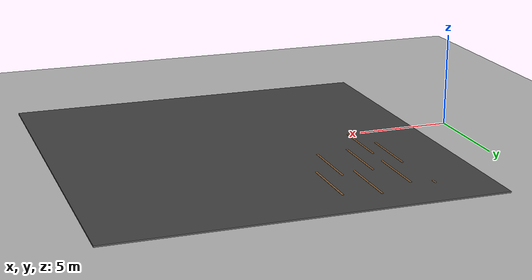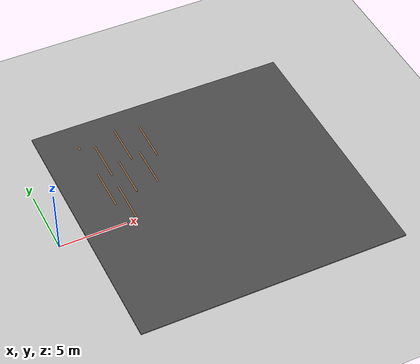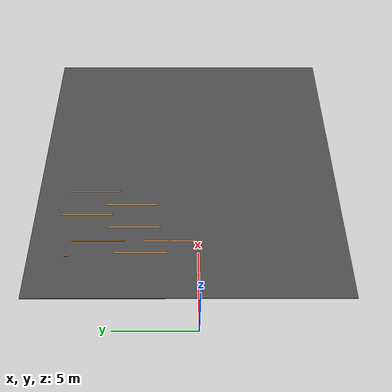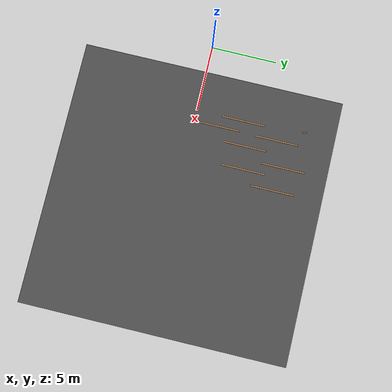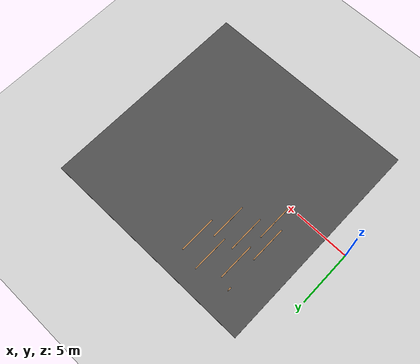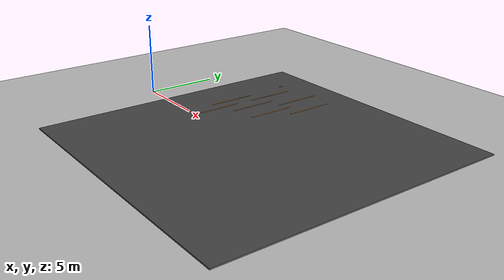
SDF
<sdf version="1.7">
 <world name="default">
  <model name="ground_plane">
   <static>1</static>
   <link name="link">
    <collision name="collision">
     <geometry><plane><normal>0 0 1</normal><size>100 100</size></plane></geometry>
     <surface><friction><ode><mu>100</mu><mu2>50</mu2></ode></friction></surface>
    </collision>
    <visual name="visual">
     <cast_shadows>0</cast_shadows>
     <geometry><plane><normal>0 0 1</normal><size>100 100</size></plane></geometry>
     <material>
      <script><uri>file://media/materials/scripts/gazebo.material</uri><name>Gazebo/Grey</name></script>
     </material>
    </visual>
   </link>
  </model>
  <model name="asphalt_plane">
   <static>1</static>
   <link name="link">
    <collision name="collision"><geometry><box><size>20 20 0.1</size></box></geometry></collision>
    <visual name="visual">
     <cast_shadows>0</cast_shadows>
     <geometry><box><size>20 20 0.1</size></box></geometry>
     <material>
      <script>
       <uri>model://asphalt_plane/materials/scripts</uri>
       <uri>model://asphalt_plane/materials/textures</uri>
       <name>vrc/asphalt</name>
      </script>
     </material>
    </visual>
   </link>
   <pose>11.9878 0.594036 0 0 -0 0</pose>
  </model>
  <model name="wooden_board33_0">
   <link name="base">
    <pose>-0 -0 0.00523 0 -0 0</pose>
    <inertial>
     <mass>0.2765</mass>
     <inertia>
      <ixx>0.0025148</ixx>
      <ixy>0</ixy>
      <ixz>0</ixz>
      <iyy>0.00024037</iyy>
      <iyz>0</iyz>
      <izz>0.00275013</izz>
     </inertia>
    </inertial>
    <visual name="visual">
     <geometry><box><size>0.1016 3.3302 0.02046</size></box></geometry>
     <material>
      <script><uri>file://media/materials/scripts/gazebo.material</uri><name>Gazebo/Wood</name></script>
      <shader type="pixel"><normal_map>__default__</normal_map></shader>
      <ambient>1 1 1 1</ambient>
      <diffuse>1 1 1 1</diffuse>
      <specular>0.2 0.2 0.2 1</specular>
      <emissive>0 0 0 1</emissive>
     </material>
    </visual>
    <visual name="tee_nut_1">
     <pose>0 -0.116 0 0 -0 0</pose>
     <geometry><cylinder><radius>0.00635</radius><length>0.020565</length></cylinder></geometry>
     <material>
      <script><uri>file://media/materials/scripts/gazebo.material</uri><name>Gazebo/Grey</name></script>
      <shader type="pixel"><normal_map>__default__</normal_map></shader>
      <ambient>0.3 0.3 0.3 1</ambient>
      <diffuse>0.7 0.7 0.7 1</diffuse>
      <specular>0.01 0.01 0.01 1</specular>
      <emissive>0 0 0 1</emissive>
     </material>
    </visual>
    <visual name="tee_nut_3">
     <pose>0 0.038 0 0 -0 0</pose>
     <geometry><cylinder><radius>0.00635</radius><length>0.020565</length></cylinder></geometry>
     <material>
      <script><uri>file://media/materials/scripts/gazebo.material</uri><name>Gazebo/Grey</name></script>
      <shader type="pixel"><normal_map>__default__</normal_map></shader>
      <ambient>0.3 0.3 0.3 1</ambient>
      <diffuse>0.7 0.7 0.7 1</diffuse>
      <specular>0.01 0.01 0.01 1</specular>
      <emissive>0 0 0 1</emissive>
     </material>
    </visual>
    <visual name="tee_nut_2">
     <pose>0 -0.038 0 0 -0 0</pose>
     <geometry><cylinder><radius>0.00635</radius><length>0.020565</length></cylinder></geometry>
     <material>
      <script><uri>file://media/materials/scripts/gazebo.material</uri><name>Gazebo/Grey</name></script>
      <shader type="pixel"><normal_map>__default__</normal_map></shader>
      <ambient>0.3 0.3 0.3 1</ambient>
      <diffuse>0.7 0.7 0.7 1</diffuse>
      <specular>0.01 0.01 0.01 1</specular>
      <emissive>0 0 0 1</emissive>
     </material>
    </visual>
    <visual name="tee_nut_4">
     <pose>0 0.116 0 0 -0 0</pose>
     <geometry><cylinder><radius>0.00635</radius><length>0.020565</length></cylinder></geometry>
     <material>
      <script><uri>file://media/materials/scripts/gazebo.material</uri><name>Gazebo/Grey</name></script>
      <shader type="pixel"><normal_map>__default__</normal_map></shader>
      <ambient>0.3 0.3 0.3 1</ambient>
      <diffuse>0.7 0.7 0.7 1</diffuse>
      <specular>0.01 0.01 0.01 1</specular>
      <emissive>0 0 0 1</emissive>
     </material>
    </visual>
    <collision name="collision">
     <geometry><box><size>0.1016 0.3302 0.01046</size></box></geometry>
     <surface>
      <friction>
       <ode><mu>1</mu><mu2>1</mu2><fdir1>0 0 0</fdir1><slip1>0</slip1><slip2>0</slip2></ode>
       <torsional>
        <coefficient>1</coefficient>
        <patch_radius>0</patch_radius>
        <surface_radius>0.01</surface_radius>
        <use_patch_radius>0</use_patch_radius>
        <ode><slip>0</slip></ode>
       </torsional>
      </friction>
      <bounce><restitution_coefficient>0</restitution_coefficient><threshold>1e+06</threshold></bounce>
      <contact>
       <collide_without_contact>0</collide_without_contact>
       <collide_without_contact_bitmask>1</collide_without_contact_bitmask>
       <collide_bitmask>1</collide_bitmask>
       <ode>
        <soft_cfm>0</soft_cfm>
        <soft_erp>0.2</soft_erp>
        <kp>100000</kp>
        <kd>100</kd>
        <max_vel>100</max_vel>
        <min_depth>0.001</min_depth>
       </ode>
       <bullet>
        <split_impulse>1</split_impulse>
        <split_impulse_penetration_threshold>-0.01</split_impulse_penetration_threshold>
        <soft_cfm>0</soft_cfm>
        <soft_erp>0.2</soft_erp>
        <kp>100000</kp>
        <kd>100</kd>
       </bullet>
      </contact>
     </surface>
    </collision>
   </link>
   <static>0</static>
   <pose>5.87061 1.83502 0.048993 0 -0 6e-05</pose>
  </model>
  <model name="wooden_board33_2">
   <link name="base">
    <pose>-0 -0 0.00523 0 -0 0</pose>
    <inertial>
     <mass>0.2765</mass>
     <inertia>
      <ixx>0.0025148</ixx>
      <ixy>0</ixy>
      <ixz>0</ixz>
      <iyy>0.00024037</iyy>
      <iyz>0</iyz>
      <izz>0.00275013</izz>
     </inertia>
    </inertial>
    <visual name="visual">
     <geometry><box><size>0.1016 3.3302 0.02046</size></box></geometry>
     <material>
      <script><uri>file://media/materials/scripts/gazebo.material</uri><name>Gazebo/Wood</name></script>
      <shader type="pixel"><normal_map>__default__</normal_map></shader>
      <ambient>1 1 1 1</ambient>
      <diffuse>1 1 1 1</diffuse>
      <specular>0.2 0.2 0.2 1</specular>
      <emissive>0 0 0 1</emissive>
     </material>
    </visual>
    <visual name="tee_nut_1">
     <pose>0 -0.116 0 0 -0 0</pose>
     <geometry><cylinder><radius>0.00635</radius><length>0.020565</length></cylinder></geometry>
     <material>
      <script><uri>file://media/materials/scripts/gazebo.material</uri><name>Gazebo/Grey</name></script>
      <shader type="pixel"><normal_map>__default__</normal_map></shader>
      <ambient>0.3 0.3 0.3 1</ambient>
      <diffuse>0.7 0.7 0.7 1</diffuse>
      <specular>0.01 0.01 0.01 1</specular>
      <emissive>0 0 0 1</emissive>
     </material>
    </visual>
    <visual name="tee_nut_3">
     <pose>0 0.038 0 0 -0 0</pose>
     <geometry><cylinder><radius>0.00635</radius><length>0.020565</length></cylinder></geometry>
     <material>
      <script><uri>file://media/materials/scripts/gazebo.material</uri><name>Gazebo/Grey</name></script>
      <shader type="pixel"><normal_map>__default__</normal_map></shader>
      <ambient>0.3 0.3 0.3 1</ambient>
      <diffuse>0.7 0.7 0.7 1</diffuse>
      <specular>0.01 0.01 0.01 1</specular>
      <emissive>0 0 0 1</emissive>
     </material>
    </visual>
    <visual name="tee_nut_2">
     <pose>0 -0.038 0 0 -0 0</pose>
     <geometry><cylinder><radius>0.00635</radius><length>0.020565</length></cylinder></geometry>
     <material>
      <script><uri>file://media/materials/scripts/gazebo.material</uri><name>Gazebo/Grey</name></script>
      <shader type="pixel"><normal_map>__default__</normal_map></shader>
      <ambient>0.3 0.3 0.3 1</ambient>
      <diffuse>0.7 0.7 0.7 1</diffuse>
      <specular>0.01 0.01 0.01 1</specular>
      <emissive>0 0 0 1</emissive>
     </material>
    </visual>
    <visual name="tee_nut_4">
     <pose>0 0.116 0 0 -0 0</pose>
     <geometry><cylinder><radius>0.00635</radius><length>0.020565</length></cylinder></geometry>
     <material>
      <script><uri>file://media/materials/scripts/gazebo.material</uri><name>Gazebo/Grey</name></script>
      <shader type="pixel"><normal_map>__default__</normal_map></shader>
      <ambient>0.3 0.3 0.3 1</ambient>
      <diffuse>0.7 0.7 0.7 1</diffuse>
      <specular>0.01 0.01 0.01 1</specular>
      <emissive>0 0 0 1</emissive>
     </material>
    </visual>
    <collision name="collision">
     <geometry><box><size>0.1016 0.3302 0.01046</size></box></geometry>
     <surface>
      <friction>
       <ode><mu>1</mu><mu2>1</mu2><fdir1>0 0 0</fdir1><slip1>0</slip1><slip2>0</slip2></ode>
       <torsional>
        <coefficient>1</coefficient>
        <patch_radius>0</patch_radius>
        <surface_radius>0.01</surface_radius>
        <use_patch_radius>0</use_patch_radius>
        <ode><slip>0</slip></ode>
       </torsional>
      </friction>
      <bounce><restitution_coefficient>0</restitution_coefficient><threshold>1e+06</threshold></bounce>
      <contact>
       <collide_without_contact>0</collide_without_contact>
       <collide_without_contact_bitmask>1</collide_without_contact_bitmask>
       <collide_bitmask>1</collide_bitmask>
       <ode>
        <soft_cfm>0</soft_cfm>
        <soft_erp>0.2</soft_erp>
        <kp>100000</kp>
        <kd>100</kd>
        <max_vel>100</max_vel>
        <min_depth>0.001</min_depth>
       </ode>
       <bullet>
        <split_impulse>1</split_impulse>
        <split_impulse_penetration_threshold>-0.01</split_impulse_penetration_threshold>
        <soft_cfm>0</soft_cfm>
        <soft_erp>0.2</soft_erp>
        <kp>100000</kp>
        <kd>100</kd>
       </bullet>
      </contact>
     </surface>
    </collision>
   </link>
   <static>0</static>
   <pose>5.03742 3.57915 0.048993 0 -0 6e-05</pose>
  </model>
  <model name="wooden_board33_3">
   <link name="base">
    <pose>-0 -0 0.00523 0 -0 0</pose>
    <inertial>
     <mass>0.2765</mass>
     <inertia>
      <ixx>0.0025148</ixx>
      <ixy>0</ixy>
      <ixz>0</ixz>
      <iyy>0.00024037</iyy>
      <iyz>0</iyz>
      <izz>0.00275013</izz>
     </inertia>
    </inertial>
    <visual name="visual">
     <geometry><box><size>0.1016 3.3302 0.02046</size></box></geometry>
     <material>
      <script><uri>file://media/materials/scripts/gazebo.material</uri><name>Gazebo/Wood</name></script>
      <shader type="pixel"><normal_map>__default__</normal_map></shader>
      <ambient>1 1 1 1</ambient>
      <diffuse>1 1 1 1</diffuse>
      <specular>0.2 0.2 0.2 1</specular>
      <emissive>0 0 0 1</emissive>
     </material>
    </visual>
    <visual name="tee_nut_1">
     <pose>0 -0.116 0 0 -0 0</pose>
     <geometry><cylinder><radius>0.00635</radius><length>0.020565</length></cylinder></geometry>
     <material>
      <script><uri>file://media/materials/scripts/gazebo.material</uri><name>Gazebo/Grey</name></script>
      <shader type="pixel"><normal_map>__default__</normal_map></shader>
      <ambient>0.3 0.3 0.3 1</ambient>
      <diffuse>0.7 0.7 0.7 1</diffuse>
      <specular>0.01 0.01 0.01 1</specular>
      <emissive>0 0 0 1</emissive>
     </material>
    </visual>
    <visual name="tee_nut_3">
     <pose>0 0.038 0 0 -0 0</pose>
     <geometry><cylinder><radius>0.00635</radius><length>0.020565</length></cylinder></geometry>
     <material>
      <script><uri>file://media/materials/scripts/gazebo.material</uri><name>Gazebo/Grey</name></script>
      <shader type="pixel"><normal_map>__default__</normal_map></shader>
      <ambient>0.3 0.3 0.3 1</ambient>
      <diffuse>0.7 0.7 0.7 1</diffuse>
      <specular>0.01 0.01 0.01 1</specular>
      <emissive>0 0 0 1</emissive>
     </material>
    </visual>
    <visual name="tee_nut_2">
     <pose>0 -0.038 0 0 -0 0</pose>
     <geometry><cylinder><radius>0.00635</radius><length>0.020565</length></cylinder></geometry>
     <material>
      <script><uri>file://media/materials/scripts/gazebo.material</uri><name>Gazebo/Grey</name></script>
      <shader type="pixel"><normal_map>__default__</normal_map></shader>
      <ambient>0.3 0.3 0.3 1</ambient>
      <diffuse>0.7 0.7 0.7 1</diffuse>
      <specular>0.01 0.01 0.01 1</specular>
      <emissive>0 0 0 1</emissive>
     </material>
    </visual>
    <visual name="tee_nut_4">
     <pose>0 0.116 0 0 -0 0</pose>
     <geometry><cylinder><radius>0.00635</radius><length>0.020565</length></cylinder></geometry>
     <material>
      <script><uri>file://media/materials/scripts/gazebo.material</uri><name>Gazebo/Grey</name></script>
      <shader type="pixel"><normal_map>__default__</normal_map></shader>
      <ambient>0.3 0.3 0.3 1</ambient>
      <diffuse>0.7 0.7 0.7 1</diffuse>
      <specular>0.01 0.01 0.01 1</specular>
      <emissive>0 0 0 1</emissive>
     </material>
    </visual>
    <collision name="collision">
     <geometry><box><size>0.1016 0.3302 0.01046</size></box></geometry>
     <surface>
      <friction>
       <ode><mu>1</mu><mu2>1</mu2><fdir1>0 0 0</fdir1><slip1>0</slip1><slip2>0</slip2></ode>
       <torsional>
        <coefficient>1</coefficient>
        <patch_radius>0</patch_radius>
        <surface_radius>0.01</surface_radius>
        <use_patch_radius>0</use_patch_radius>
        <ode><slip>0</slip></ode>
       </torsional>
      </friction>
      <bounce><restitution_coefficient>0</restitution_coefficient><threshold>1e+06</threshold></bounce>
      <contact>
       <collide_without_contact>0</collide_without_contact>
       <collide_without_contact_bitmask>1</collide_without_contact_bitmask>
       <collide_bitmask>1</collide_bitmask>
       <ode>
        <soft_cfm>0</soft_cfm>
        <soft_erp>0.2</soft_erp>
        <kp>100000</kp>
        <kd>100</kd>
        <max_vel>100</max_vel>
        <min_depth>0.001</min_depth>
       </ode>
       <bullet>
        <split_impulse>1</split_impulse>
        <split_impulse_penetration_threshold>-0.01</split_impulse_penetration_threshold>
        <soft_cfm>0</soft_cfm>
        <soft_erp>0.2</soft_erp>
        <kp>100000</kp>
        <kd>100</kd>
       </bullet>
      </contact>
     </surface>
    </collision>
   </link>
   <static>0</static>
   <pose>5.92379 6.30968 0.048993 0 -0 6e-05</pose>
  </model>
  <model name="wooden_board33_5">
   <link name="base">
    <pose>-0 -0 0.00523 0 -0 0</pose>
    <inertial>
     <mass>0.2765</mass>
     <inertia>
      <ixx>0.0025148</ixx>
      <ixy>0</ixy>
      <ixz>0</ixz>
      <iyy>0.00024037</iyy>
      <iyz>0</iyz>
      <izz>0.00275013</izz>
     </inertia>
    </inertial>
    <visual name="visual">
     <geometry><box><size>0.1016 3.3302 0.02046</size></box></geometry>
     <material>
      <script><uri>file://media/materials/scripts/gazebo.material</uri><name>Gazebo/Wood</name></script>
      <shader type="pixel"><normal_map>__default__</normal_map></shader>
      <ambient>1 1 1 1</ambient>
      <diffuse>1 1 1 1</diffuse>
      <specular>0.2 0.2 0.2 1</specular>
      <emissive>0 0 0 1</emissive>
     </material>
    </visual>
    <visual name="tee_nut_1">
     <pose>0 -0.116 0 0 -0 0</pose>
     <geometry><cylinder><radius>0.00635</radius><length>0.020565</length></cylinder></geometry>
     <material>
      <script><uri>file://media/materials/scripts/gazebo.material</uri><name>Gazebo/Grey</name></script>
      <shader type="pixel"><normal_map>__default__</normal_map></shader>
      <ambient>0.3 0.3 0.3 1</ambient>
      <diffuse>0.7 0.7 0.7 1</diffuse>
      <specular>0.01 0.01 0.01 1</specular>
      <emissive>0 0 0 1</emissive>
     </material>
    </visual>
    <visual name="tee_nut_3">
     <pose>0 0.038 0 0 -0 0</pose>
     <geometry><cylinder><radius>0.00635</radius><length>0.020565</length></cylinder></geometry>
     <material>
      <script><uri>file://media/materials/scripts/gazebo.material</uri><name>Gazebo/Grey</name></script>
      <shader type="pixel"><normal_map>__default__</normal_map></shader>
      <ambient>0.3 0.3 0.3 1</ambient>
      <diffuse>0.7 0.7 0.7 1</diffuse>
      <specular>0.01 0.01 0.01 1</specular>
      <emissive>0 0 0 1</emissive>
     </material>
    </visual>
    <visual name="tee_nut_2">
     <pose>0 -0.038 0 0 -0 0</pose>
     <geometry><cylinder><radius>0.00635</radius><length>0.020565</length></cylinder></geometry>
     <material>
      <script><uri>file://media/materials/scripts/gazebo.material</uri><name>Gazebo/Grey</name></script>
      <shader type="pixel"><normal_map>__default__</normal_map></shader>
      <ambient>0.3 0.3 0.3 1</ambient>
      <diffuse>0.7 0.7 0.7 1</diffuse>
      <specular>0.01 0.01 0.01 1</specular>
      <emissive>0 0 0 1</emissive>
     </material>
    </visual>
    <visual name="tee_nut_4">
     <pose>0 0.116 0 0 -0 0</pose>
     <geometry><cylinder><radius>0.00635</radius><length>0.020565</length></cylinder></geometry>
     <material>
      <script><uri>file://media/materials/scripts/gazebo.material</uri><name>Gazebo/Grey</name></script>
      <shader type="pixel"><normal_map>__default__</normal_map></shader>
      <ambient>0.3 0.3 0.3 1</ambient>
      <diffuse>0.7 0.7 0.7 1</diffuse>
      <specular>0.01 0.01 0.01 1</specular>
      <emissive>0 0 0 1</emissive>
     </material>
    </visual>
    <collision name="collision">
     <geometry><box><size>0.1016 0.3302 0.01046</size></box></geometry>
     <surface>
      <friction>
       <ode><mu>1</mu><mu2>1</mu2><fdir1>0 0 0</fdir1><slip1>0</slip1><slip2>0</slip2></ode>
       <torsional>
        <coefficient>1</coefficient>
        <patch_radius>0</patch_radius>
        <surface_radius>0.01</surface_radius>
        <use_patch_radius>0</use_patch_radius>
        <ode><slip>0</slip></ode>
       </torsional>
      </friction>
      <bounce><restitution_coefficient>0</restitution_coefficient><threshold>1e+06</threshold></bounce>
      <contact>
       <collide_without_contact>0</collide_without_contact>
       <collide_without_contact_bitmask>1</collide_without_contact_bitmask>
       <collide_bitmask>1</collide_bitmask>
       <ode>
        <soft_cfm>0</soft_cfm>
        <soft_erp>0.2</soft_erp>
        <kp>100000</kp>
        <kd>100</kd>
        <max_vel>100</max_vel>
        <min_depth>0.001</min_depth>
       </ode>
       <bullet>
        <split_impulse>1</split_impulse>
        <split_impulse_penetration_threshold>-0.01</split_impulse_penetration_threshold>
        <soft_cfm>0</soft_cfm>
        <soft_erp>0.2</soft_erp>
        <kp>100000</kp>
        <kd>100</kd>
       </bullet>
      </contact>
     </surface>
    </collision>
   </link>
   <static>0</static>
   <pose>6.89687 4.10716 0.048993 0 -0 6e-05</pose>
  </model>
  <model name="wooden_board33_8">
   <link name="base">
    <pose>-0 -0 0.00523 0 -0 0</pose>
    <inertial>
     <mass>0.2765</mass>
     <inertia>
      <ixx>0.0025148</ixx>
      <ixy>0</ixy>
      <ixz>0</ixz>
      <iyy>0.00024037</iyy>
      <iyz>0</iyz>
      <izz>0.00275013</izz>
     </inertia>
    </inertial>
    <visual name="visual">
     <geometry><box><size>0.1016 3.3302 0.02046</size></box></geometry>
     <material>
      <script><uri>file://media/materials/scripts/gazebo.material</uri><name>Gazebo/Wood</name></script>
      <shader type="pixel"><normal_map>__default__</normal_map></shader>
      <ambient>1 1 1 1</ambient>
      <diffuse>1 1 1 1</diffuse>
      <specular>0.2 0.2 0.2 1</specular>
      <emissive>0 0 0 1</emissive>
     </material>
    </visual>
    <visual name="tee_nut_1">
     <pose>0 -0.116 0 0 -0 0</pose>
     <geometry><cylinder><radius>0.00635</radius><length>0.020565</length></cylinder></geometry>
     <material>
      <script><uri>file://media/materials/scripts/gazebo.material</uri><name>Gazebo/Grey</name></script>
      <shader type="pixel"><normal_map>__default__</normal_map></shader>
      <ambient>0.3 0.3 0.3 1</ambient>
      <diffuse>0.7 0.7 0.7 1</diffuse>
      <specular>0.01 0.01 0.01 1</specular>
      <emissive>0 0 0 1</emissive>
     </material>
    </visual>
    <visual name="tee_nut_3">
     <pose>0 0.038 0 0 -0 0</pose>
     <geometry><cylinder><radius>0.00635</radius><length>0.020565</length></cylinder></geometry>
     <material>
      <script><uri>file://media/materials/scripts/gazebo.material</uri><name>Gazebo/Grey</name></script>
      <shader type="pixel"><normal_map>__default__</normal_map></shader>
      <ambient>0.3 0.3 0.3 1</ambient>
      <diffuse>0.7 0.7 0.7 1</diffuse>
      <specular>0.01 0.01 0.01 1</specular>
      <emissive>0 0 0 1</emissive>
     </material>
    </visual>
    <visual name="tee_nut_2">
     <pose>0 -0.038 0 0 -0 0</pose>
     <geometry><cylinder><radius>0.00635</radius><length>0.020565</length></cylinder></geometry>
     <material>
      <script><uri>file://media/materials/scripts/gazebo.material</uri><name>Gazebo/Grey</name></script>
      <shader type="pixel"><normal_map>__default__</normal_map></shader>
      <ambient>0.3 0.3 0.3 1</ambient>
      <diffuse>0.7 0.7 0.7 1</diffuse>
      <specular>0.01 0.01 0.01 1</specular>
      <emissive>0 0 0 1</emissive>
     </material>
    </visual>
    <visual name="tee_nut_4">
     <pose>0 0.116 0 0 -0 0</pose>
     <geometry><cylinder><radius>0.00635</radius><length>0.020565</length></cylinder></geometry>
     <material>
      <script><uri>file://media/materials/scripts/gazebo.material</uri><name>Gazebo/Grey</name></script>
      <shader type="pixel"><normal_map>__default__</normal_map></shader>
      <ambient>0.3 0.3 0.3 1</ambient>
      <diffuse>0.7 0.7 0.7 1</diffuse>
      <specular>0.01 0.01 0.01 1</specular>
      <emissive>0 0 0 1</emissive>
     </material>
    </visual>
    <collision name="collision">
     <geometry><box><size>0.1016 0.3302 0.01046</size></box></geometry>
     <surface>
      <friction>
       <ode><mu>1</mu><mu2>1</mu2><fdir1>0 0 0</fdir1><slip1>0</slip1><slip2>0</slip2></ode>
       <torsional>
        <coefficient>1</coefficient>
        <patch_radius>0</patch_radius>
        <surface_radius>0.01</surface_radius>
        <use_patch_radius>0</use_patch_radius>
        <ode><slip>0</slip></ode>
       </torsional>
      </friction>
      <bounce><restitution_coefficient>0</restitution_coefficient><threshold>1e+06</threshold></bounce>
      <contact>
       <collide_without_contact>0</collide_without_contact>
       <collide_without_contact_bitmask>1</collide_without_contact_bitmask>
       <collide_bitmask>1</collide_bitmask>
       <ode>
        <soft_cfm>0</soft_cfm>
        <soft_erp>0.2</soft_erp>
        <kp>100000</kp>
        <kd>100</kd>
        <max_vel>100</max_vel>
        <min_depth>0.001</min_depth>
       </ode>
       <bullet>
        <split_impulse>1</split_impulse>
        <split_impulse_penetration_threshold>-0.01</split_impulse_penetration_threshold>
        <soft_cfm>0</soft_cfm>
        <soft_erp>0.2</soft_erp>
        <kp>100000</kp>
        <kd>100</kd>
       </bullet>
      </contact>
     </surface>
    </collision>
   </link>
   <static>0</static>
   <pose>7.85253 7.23942 0.048993 0 -0 6e-05</pose>
  </model>
  <model name="wooden_board33_10">
   <link name="base">
    <pose>-0 -0 0.00523 0 -0 0</pose>
    <inertial>
     <mass>0.2765</mass>
     <inertia>
      <ixx>0.0025148</ixx>
      <ixy>0</ixy>
      <ixz>0</ixz>
      <iyy>0.00024037</iyy>
      <iyz>0</iyz>
      <izz>0.00275013</izz>
     </inertia>
    </inertial>
    <visual name="visual">
     <geometry><box><size>0.1016 3.3302 0.02046</size></box></geometry>
     <material>
      <script><uri>file://media/materials/scripts/gazebo.material</uri><name>Gazebo/Wood</name></script>
      <shader type="pixel"><normal_map>__default__</normal_map></shader>
      <ambient>1 1 1 1</ambient>
      <diffuse>1 1 1 1</diffuse>
      <specular>0.2 0.2 0.2 1</specular>
      <emissive>0 0 0 1</emissive>
     </material>
    </visual>
    <visual name="tee_nut_1">
     <pose>0 -0.116 0 0 -0 0</pose>
     <geometry><cylinder><radius>0.00635</radius><length>0.020565</length></cylinder></geometry>
     <material>
      <script><uri>file://media/materials/scripts/gazebo.material</uri><name>Gazebo/Grey</name></script>
      <shader type="pixel"><normal_map>__default__</normal_map></shader>
      <ambient>0.3 0.3 0.3 1</ambient>
      <diffuse>0.7 0.7 0.7 1</diffuse>
      <specular>0.01 0.01 0.01 1</specular>
      <emissive>0 0 0 1</emissive>
     </material>
    </visual>
    <visual name="tee_nut_3">
     <pose>0 0.038 0 0 -0 0</pose>
     <geometry><cylinder><radius>0.00635</radius><length>0.020565</length></cylinder></geometry>
     <material>
      <script><uri>file://media/materials/scripts/gazebo.material</uri><name>Gazebo/Grey</name></script>
      <shader type="pixel"><normal_map>__default__</normal_map></shader>
      <ambient>0.3 0.3 0.3 1</ambient>
      <diffuse>0.7 0.7 0.7 1</diffuse>
      <specular>0.01 0.01 0.01 1</specular>
      <emissive>0 0 0 1</emissive>
     </material>
    </visual>
    <visual name="tee_nut_2">
     <pose>0 -0.038 0 0 -0 0</pose>
     <geometry><cylinder><radius>0.00635</radius><length>0.020565</length></cylinder></geometry>
     <material>
      <script><uri>file://media/materials/scripts/gazebo.material</uri><name>Gazebo/Grey</name></script>
      <shader type="pixel"><normal_map>__default__</normal_map></shader>
      <ambient>0.3 0.3 0.3 1</ambient>
      <diffuse>0.7 0.7 0.7 1</diffuse>
      <specular>0.01 0.01 0.01 1</specular>
      <emissive>0 0 0 1</emissive>
     </material>
    </visual>
    <visual name="tee_nut_4">
     <pose>0 0.116 0 0 -0 0</pose>
     <geometry><cylinder><radius>0.00635</radius><length>0.020565</length></cylinder></geometry>
     <material>
      <script><uri>file://media/materials/scripts/gazebo.material</uri><name>Gazebo/Grey</name></script>
      <shader type="pixel"><normal_map>__default__</normal_map></shader>
      <ambient>0.3 0.3 0.3 1</ambient>
      <diffuse>0.7 0.7 0.7 1</diffuse>
      <specular>0.01 0.01 0.01 1</specular>
      <emissive>0 0 0 1</emissive>
     </material>
    </visual>
    <collision name="collision">
     <geometry><box><size>0.1016 0.3302 0.01046</size></box></geometry>
     <surface>
      <friction>
       <ode><mu>1</mu><mu2>1</mu2><fdir1>0 0 0</fdir1><slip1>0</slip1><slip2>0</slip2></ode>
       <torsional>
        <coefficient>1</coefficient>
        <patch_radius>0</patch_radius>
        <surface_radius>0.01</surface_radius>
        <use_patch_radius>0</use_patch_radius>
        <ode><slip>0</slip></ode>
       </torsional>
      </friction>
      <bounce><restitution_coefficient>0</restitution_coefficient><threshold>1e+06</threshold></bounce>
      <contact>
       <collide_without_contact>0</collide_without_contact>
       <collide_without_contact_bitmask>1</collide_without_contact_bitmask>
       <collide_bitmask>1</collide_bitmask>
       <ode>
        <soft_cfm>0</soft_cfm>
        <soft_erp>0.2</soft_erp>
        <kp>100000</kp>
        <kd>100</kd>
        <max_vel>100</max_vel>
        <min_depth>0.001</min_depth>
       </ode>
       <bullet>
        <split_impulse>1</split_impulse>
        <split_impulse_penetration_threshold>-0.01</split_impulse_penetration_threshold>
        <soft_cfm>0</soft_cfm>
        <soft_erp>0.2</soft_erp>
        <kp>100000</kp>
        <kd>100</kd>
       </bullet>
      </contact>
     </surface>
    </collision>
   </link>
   <static>0</static>
   <pose>8.64032 4.35519 0.048993 0 -0 6e-05</pose>
  </model>
  <model name="wooden_board33_12">
   <link name="base">
    <pose>-0 -0 0.00523 0 -0 0</pose>
    <inertial>
     <mass>0.2765</mass>
     <inertia>
      <ixx>0.0025148</ixx>
      <ixy>0</ixy>
      <ixz>0</ixz>
      <iyy>0.00024037</iyy>
      <iyz>0</iyz>
      <izz>0.00275013</izz>
     </inertia>
    </inertial>
    <visual name="visual">
     <geometry><box><size>0.1016 3.3302 0.02046</size></box></geometry>
     <material>
      <script><uri>file://media/materials/scripts/gazebo.material</uri><name>Gazebo/Wood</name></script>
      <shader type="pixel"><normal_map>__default__</normal_map></shader>
      <ambient>1 1 1 1</ambient>
      <diffuse>1 1 1 1</diffuse>
      <specular>0.2 0.2 0.2 1</specular>
      <emissive>0 0 0 1</emissive>
     </material>
    </visual>
    <visual name="tee_nut_1">
     <pose>0 -0.116 0 0 -0 0</pose>
     <geometry><cylinder><radius>0.00635</radius><length>0.020565</length></cylinder></geometry>
     <material>
      <script><uri>file://media/materials/scripts/gazebo.material</uri><name>Gazebo/Grey</name></script>
      <shader type="pixel"><normal_map>__default__</normal_map></shader>
      <ambient>0.3 0.3 0.3 1</ambient>
      <diffuse>0.7 0.7 0.7 1</diffuse>
      <specular>0.01 0.01 0.01 1</specular>
      <emissive>0 0 0 1</emissive>
     </material>
    </visual>
    <visual name="tee_nut_3">
     <pose>0 0.038 0 0 -0 0</pose>
     <geometry><cylinder><radius>0.00635</radius><length>0.020565</length></cylinder></geometry>
     <material>
      <script><uri>file://media/materials/scripts/gazebo.material</uri><name>Gazebo/Grey</name></script>
      <shader type="pixel"><normal_map>__default__</normal_map></shader>
      <ambient>0.3 0.3 0.3 1</ambient>
      <diffuse>0.7 0.7 0.7 1</diffuse>
      <specular>0.01 0.01 0.01 1</specular>
      <emissive>0 0 0 1</emissive>
     </material>
    </visual>
    <visual name="tee_nut_2">
     <pose>0 -0.038 0 0 -0 0</pose>
     <geometry><cylinder><radius>0.00635</radius><length>0.020565</length></cylinder></geometry>
     <material>
      <script><uri>file://media/materials/scripts/gazebo.material</uri><name>Gazebo/Grey</name></script>
      <shader type="pixel"><normal_map>__default__</normal_map></shader>
      <ambient>0.3 0.3 0.3 1</ambient>
      <diffuse>0.7 0.7 0.7 1</diffuse>
      <specular>0.01 0.01 0.01 1</specular>
      <emissive>0 0 0 1</emissive>
     </material>
    </visual>
    <visual name="tee_nut_4">
     <pose>0 0.116 0 0 -0 0</pose>
     <geometry><cylinder><radius>0.00635</radius><length>0.020565</length></cylinder></geometry>
     <material>
      <script><uri>file://media/materials/scripts/gazebo.material</uri><name>Gazebo/Grey</name></script>
      <shader type="pixel"><normal_map>__default__</normal_map></shader>
      <ambient>0.3 0.3 0.3 1</ambient>
      <diffuse>0.7 0.7 0.7 1</diffuse>
      <specular>0.01 0.01 0.01 1</specular>
      <emissive>0 0 0 1</emissive>
     </material>
    </visual>
    <collision name="collision">
     <geometry><box><size>0.1016 0.3302 0.01046</size></box></geometry>
     <surface>
      <friction>
       <ode><mu>1</mu><mu2>1</mu2><fdir1>0 0 0</fdir1><slip1>0</slip1><slip2>0</slip2></ode>
       <torsional>
        <coefficient>1</coefficient>
        <patch_radius>0</patch_radius>
        <surface_radius>0.01</surface_radius>
        <use_patch_radius>0</use_patch_radius>
        <ode><slip>0</slip></ode>
       </torsional>
      </friction>
      <bounce><restitution_coefficient>0</restitution_coefficient><threshold>1e+06</threshold></bounce>
      <contact>
       <collide_without_contact>0</collide_without_contact>
       <collide_without_contact_bitmask>1</collide_without_contact_bitmask>
       <collide_bitmask>1</collide_bitmask>
       <ode>
        <soft_cfm>0</soft_cfm>
        <soft_erp>0.2</soft_erp>
        <kp>100000</kp>
        <kd>100</kd>
        <max_vel>100</max_vel>
        <min_depth>0.001</min_depth>
       </ode>
       <bullet>
        <split_impulse>1</split_impulse>
        <split_impulse_penetration_threshold>-0.01</split_impulse_penetration_threshold>
        <soft_cfm>0</soft_cfm>
        <soft_erp>0.2</soft_erp>
        <kp>100000</kp>
        <kd>100</kd>
       </bullet>
      </contact>
     </surface>
    </collision>
   </link>
   <static>0</static>
   <pose>9.68886 6.81698 0.048993 0 -0 6e-05</pose>
  </model>
  <model name="wooden_board">
   <link name="base">
    <pose>-0 0 0.00523 0 -0 0</pose>
    <inertial>
     <mass>0.2765</mass>
     <inertia>
      <ixx>0.0025148</ixx>
      <ixy>0</ixy>
      <ixz>0</ixz>
      <iyy>0.00024037</iyy>
      <iyz>0</iyz>
      <izz>0.00275013</izz>
     </inertia>
    </inertial>
    <visual name="visual">
     <geometry><box><size>0.1016 0.3302 0.02046</size></box></geometry>
     <material>
      <script><uri>file://media/materials/scripts/gazebo.material</uri><name>Gazebo/Wood</name></script>
      <shader type="pixel"><normal_map>__default__</normal_map></shader>
      <ambient>1 1 1 1</ambient>
      <diffuse>1 1 1 1</diffuse>
      <specular>0.2 0.2 0.2 1</specular>
      <emissive>0 0 0 1</emissive>
     </material>
    </visual>
    <visual name="tee_nut_1">
     <pose>0 -0.116 0 0 -0 0</pose>
     <geometry><cylinder><radius>0.00635</radius><length>0.020565</length></cylinder></geometry>
     <material>
      <script><uri>file://media/materials/scripts/gazebo.material</uri><name>Gazebo/Grey</name></script>
      <shader type="pixel"><normal_map>__default__</normal_map></shader>
      <ambient>0.3 0.3 0.3 1</ambient>
      <diffuse>0.7 0.7 0.7 1</diffuse>
      <specular>0.01 0.01 0.01 1</specular>
      <emissive>0 0 0 1</emissive>
     </material>
    </visual>
    <visual name="tee_nut_3">
     <pose>0 0.038 0 0 -0 0</pose>
     <geometry><cylinder><radius>0.00635</radius><length>0.020565</length></cylinder></geometry>
     <material>
      <script><uri>file://media/materials/scripts/gazebo.material</uri><name>Gazebo/Grey</name></script>
      <shader type="pixel"><normal_map>__default__</normal_map></shader>
      <ambient>0.3 0.3 0.3 1</ambient>
      <diffuse>0.7 0.7 0.7 1</diffuse>
      <specular>0.01 0.01 0.01 1</specular>
      <emissive>0 0 0 1</emissive>
     </material>
    </visual>
    <visual name="tee_nut_2">
     <pose>0 -0.038 0 0 -0 0</pose>
     <geometry><cylinder><radius>0.00635</radius><length>0.020565</length></cylinder></geometry>
     <material>
      <script><uri>file://media/materials/scripts/gazebo.material</uri><name>Gazebo/Grey</name></script>
      <shader type="pixel"><normal_map>__default__</normal_map></shader>
      <ambient>0.3 0.3 0.3 1</ambient>
      <diffuse>0.7 0.7 0.7 1</diffuse>
      <specular>0.01 0.01 0.01 1</specular>
      <emissive>0 0 0 1</emissive>
     </material>
    </visual>
    <visual name="tee_nut_4">
     <pose>0 0.116 0 0 -0 0</pose>
     <geometry><cylinder><radius>0.00635</radius><length>0.020565</length></cylinder></geometry>
     <material>
      <script><uri>file://media/materials/scripts/gazebo.material</uri><name>Gazebo/Grey</name></script>
      <shader type="pixel"><normal_map>__default__</normal_map></shader>
      <ambient>0.3 0.3 0.3 1</ambient>
      <diffuse>0.7 0.7 0.7 1</diffuse>
      <specular>0.01 0.01 0.01 1</specular>
      <emissive>0 0 0 1</emissive>
     </material>
    </visual>
    <collision name="collision">
     <geometry><box><size>0.1016 0.3302 0.01046</size></box></geometry>
     <surface>
      <friction>
       <ode><mu>1</mu><mu2>1</mu2><fdir1>0 0 0</fdir1><slip1>0</slip1><slip2>0</slip2></ode>
       <torsional>
        <coefficient>1</coefficient>
        <patch_radius>0</patch_radius>
        <surface_radius>0.01</surface_radius>
        <use_patch_radius>0</use_patch_radius>
        <ode><slip>0</slip></ode>
       </torsional>
      </friction>
      <bounce><restitution_coefficient>0</restitution_coefficient><threshold>1e+06</threshold></bounce>
      <contact>
       <collide_without_contact>0</collide_without_contact>
       <collide_without_contact_bitmask>1</collide_without_contact_bitmask>
       <collide_bitmask>1</collide_bitmask>
       <ode>
        <soft_cfm>0</soft_cfm>
        <soft_erp>0.2</soft_erp>
        <kp>100000</kp>
        <kd>100</kd>
        <max_vel>100</max_vel>
        <min_depth>0.001</min_depth>
       </ode>
       <bullet>
        <split_impulse>1</split_impulse>
        <split_impulse_penetration_threshold>-0.01</split_impulse_penetration_threshold>
        <soft_cfm>0</soft_cfm>
        <soft_erp>0.2</soft_erp>
        <kp>100000</kp>
        <kd>100</kd>
       </bullet>
      </contact>
     </surface>
    </collision>
   </link>
   <static>0</static>
   <pose>4.81991 8.23625 0.048993 0 -0 6e-05</pose>
  </model>
 </world>
</sdf>
